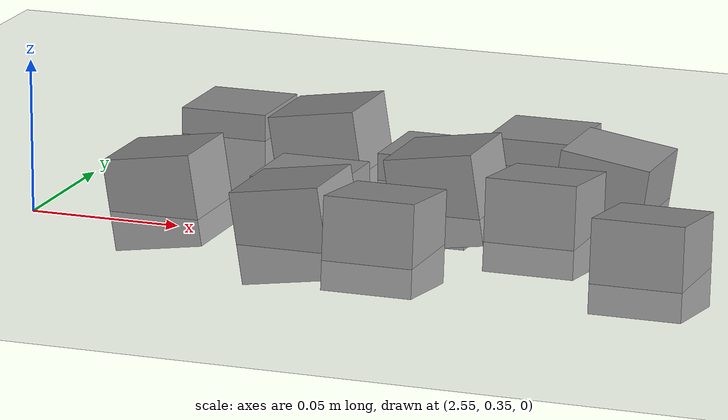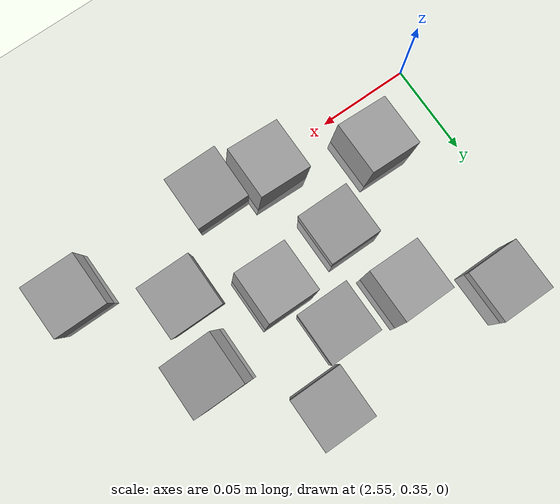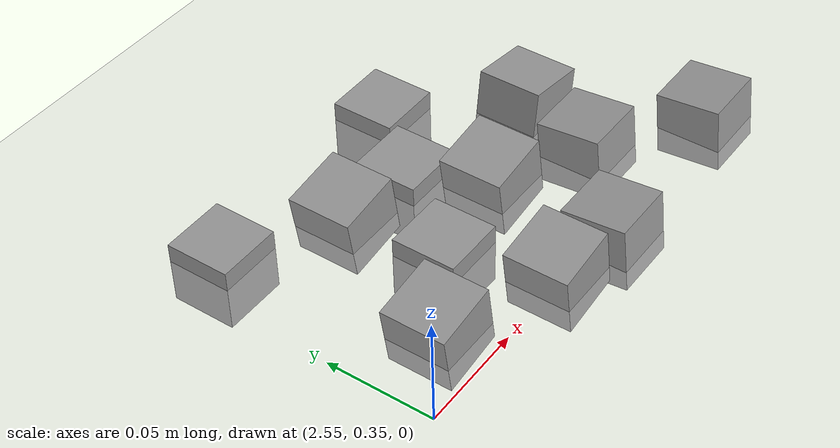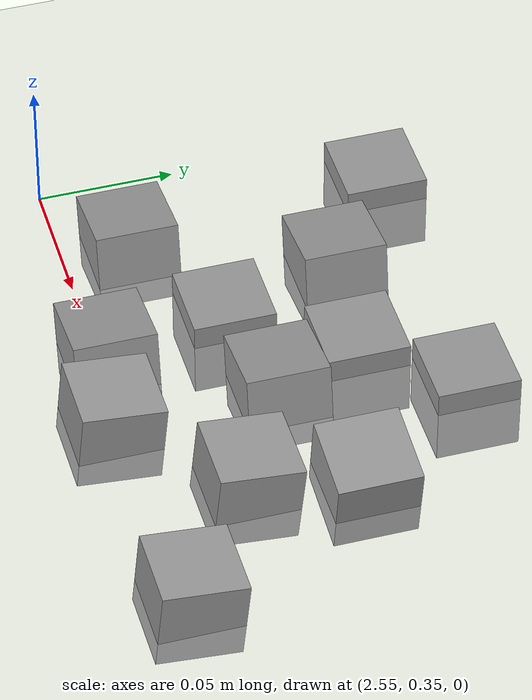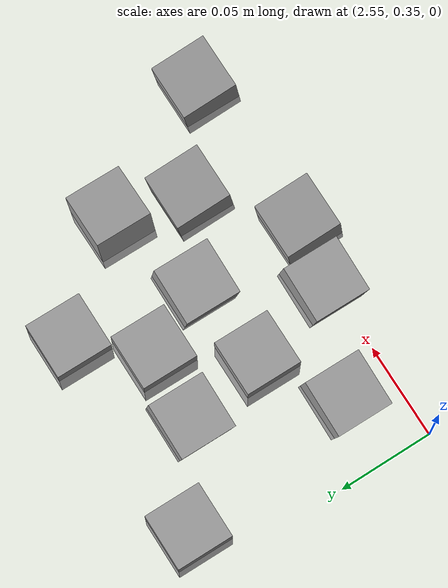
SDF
<sdf version="1.7">
 <world name="default">
  <model name="ground_plane">
   <static>1</static>
   <link name="link">
    <collision name="collision">
     <geometry><plane><normal>0 0 1</normal><size>100 100</size></plane></geometry>
     <surface><friction><ode><mu>100</mu><mu2>50</mu2></ode></friction></surface>
    </collision>
    <visual name="visual">
     <cast_shadows>0</cast_shadows>
     <geometry><plane><normal>0 0 1</normal><size>100 100</size></plane></geometry>
     <material>
      <script><uri>file://media/materials/scripts/gazebo.material</uri><name>Gazebo/Grey</name></script>
     </material>
    </visual>
   </link>
  </model>
  <model name="stone_road_7">
   <link name="link_0_clone_2_clone_2">
    <inertial>
     <mass>1</mass>
     <inertia>
      <ixx>0.166667</ixx>
      <ixy>0</ixy>
      <ixz>0</ixz>
      <iyy>0.166667</iyy>
      <iyz>0</iyz>
      <izz>0.166667</izz>
     </inertia>
    </inertial>
    <pose>0.066563 0.110568 0.003778 0 -0.15 0</pose>
    <kinematic>1</kinematic>
    <visual name="visual">
     <geometry><box><size>0.03 0.03 0.03</size></box></geometry>
     <material>
      <lighting>1</lighting>
      <script><uri>file://media/materials/scripts/gazebo.material</uri><name>Gazebo/Grey</name></script>
      <shader type="pixel"><normal_map>__default__</normal_map></shader>
      <ambient>0.3 0.3 0.3 1</ambient>
      <diffuse>0.7 0.7 0.7 1</diffuse>
      <specular>0.01 0.01 0.01 1</specular>
      <emissive>0 0 0 1</emissive>
     </material>
    </visual>
    <collision name="collision">
     <geometry><box><size>0.03 0.03 0.03</size></box></geometry>
     <surface>
      <friction>
       <ode><mu>1</mu><mu2>1</mu2><fdir1>0 0 0</fdir1><slip1>0</slip1><slip2>0</slip2></ode>
       <torsional>
        <coefficient>1</coefficient>
        <patch_radius>0</patch_radius>
        <surface_radius>0</surface_radius>
        <use_patch_radius>1</use_patch_radius>
        <ode><slip>0</slip></ode>
       </torsional>
      </friction>
      <bounce><restitution_coefficient>0</restitution_coefficient><threshold>1e+06</threshold></bounce>
      <contact>
       <collide_without_contact>0</collide_without_contact>
       <collide_without_contact_bitmask>1</collide_without_contact_bitmask>
       <collide_bitmask>1</collide_bitmask>
       <ode>
        <soft_cfm>0</soft_cfm>
        <soft_erp>0.2</soft_erp>
        <kp>1e+13</kp>
        <kd>1</kd>
        <max_vel>0.01</max_vel>
        <min_depth>0</min_depth>
       </ode>
       <bullet>
        <split_impulse>1</split_impulse>
        <split_impulse_penetration_threshold>-0.01</split_impulse_penetration_threshold>
        <soft_cfm>0</soft_cfm>
        <soft_erp>0.2</soft_erp>
        <kp>1e+13</kp>
        <kd>1</kd>
       </bullet>
      </contact>
     </surface>
    </collision>
   </link>
   <link name="link_0_clone_2_clone_2_clone_10">
    <inertial>
     <mass>1</mass>
     <inertia>
      <ixx>0.166667</ixx>
      <ixy>0</ixy>
      <ixz>0</ixz>
      <iyy>0.166667</iyy>
      <iyz>0</iyz>
      <izz>0.166667</izz>
     </inertia>
    </inertial>
    <pose>0.09869 0.163436 0.003778 0 -0.15 0</pose>
    <kinematic>1</kinematic>
    <visual name="visual">
     <geometry><box><size>0.03 0.03 0.03</size></box></geometry>
     <material>
      <lighting>1</lighting>
      <script><uri>file://media/materials/scripts/gazebo.material</uri><name>Gazebo/Grey</name></script>
      <shader type="pixel"><normal_map>__default__</normal_map></shader>
      <ambient>0.3 0.3 0.3 1</ambient>
      <diffuse>0.7 0.7 0.7 1</diffuse>
      <specular>0.01 0.01 0.01 1</specular>
      <emissive>0 0 0 1</emissive>
     </material>
    </visual>
    <collision name="collision">
     <geometry><box><size>0.03 0.03 0.03</size></box></geometry>
     <surface>
      <friction>
       <ode><mu>1</mu><mu2>1</mu2><fdir1>0 0 0</fdir1><slip1>0</slip1><slip2>0</slip2></ode>
       <torsional>
        <coefficient>1</coefficient>
        <patch_radius>0</patch_radius>
        <surface_radius>0</surface_radius>
        <use_patch_radius>1</use_patch_radius>
        <ode><slip>0</slip></ode>
       </torsional>
      </friction>
      <bounce><restitution_coefficient>0</restitution_coefficient><threshold>1e+06</threshold></bounce>
      <contact>
       <collide_without_contact>0</collide_without_contact>
       <collide_without_contact_bitmask>1</collide_without_contact_bitmask>
       <collide_bitmask>1</collide_bitmask>
       <ode>
        <soft_cfm>0</soft_cfm>
        <soft_erp>0.2</soft_erp>
        <kp>1e+13</kp>
        <kd>1</kd>
        <max_vel>0.01</max_vel>
        <min_depth>0</min_depth>
       </ode>
       <bullet>
        <split_impulse>1</split_impulse>
        <split_impulse_penetration_threshold>-0.01</split_impulse_penetration_threshold>
        <soft_cfm>0</soft_cfm>
        <soft_erp>0.2</soft_erp>
        <kp>1e+13</kp>
        <kd>1</kd>
       </bullet>
      </contact>
     </surface>
    </collision>
   </link>
   <link name="link_0_clone_2_clone_2_clone_12">
    <inertial>
     <mass>1</mass>
     <inertia>
      <ixx>0.166667</ixx>
      <ixy>0</ixy>
      <ixz>0</ixz>
      <iyy>0.166667</iyy>
      <iyz>0</iyz>
      <izz>0.166667</izz>
     </inertia>
    </inertial>
    <pose>0.044693 0.200081 0.003778 0 -0.15 0</pose>
    <kinematic>1</kinematic>
    <visual name="visual">
     <geometry><box><size>0.03 0.03 0.03</size></box></geometry>
     <material>
      <lighting>1</lighting>
      <script><uri>file://media/materials/scripts/gazebo.material</uri><name>Gazebo/Grey</name></script>
      <shader type="pixel"><normal_map>__default__</normal_map></shader>
      <ambient>0.3 0.3 0.3 1</ambient>
      <diffuse>0.7 0.7 0.7 1</diffuse>
      <specular>0.01 0.01 0.01 1</specular>
      <emissive>0 0 0 1</emissive>
     </material>
    </visual>
    <collision name="collision">
     <geometry><box><size>0.03 0.03 0.03</size></box></geometry>
     <surface>
      <friction>
       <ode><mu>1</mu><mu2>1</mu2><fdir1>0 0 0</fdir1><slip1>0</slip1><slip2>0</slip2></ode>
       <torsional>
        <coefficient>1</coefficient>
        <patch_radius>0</patch_radius>
        <surface_radius>0</surface_radius>
        <use_patch_radius>1</use_patch_radius>
        <ode><slip>0</slip></ode>
       </torsional>
      </friction>
      <bounce><restitution_coefficient>0</restitution_coefficient><threshold>1e+06</threshold></bounce>
      <contact>
       <collide_without_contact>0</collide_without_contact>
       <collide_without_contact_bitmask>1</collide_without_contact_bitmask>
       <collide_bitmask>1</collide_bitmask>
       <ode>
        <soft_cfm>0</soft_cfm>
        <soft_erp>0.2</soft_erp>
        <kp>1e+13</kp>
        <kd>1</kd>
        <max_vel>0.01</max_vel>
        <min_depth>0</min_depth>
       </ode>
       <bullet>
        <split_impulse>1</split_impulse>
        <split_impulse_penetration_threshold>-0.01</split_impulse_penetration_threshold>
        <soft_cfm>0</soft_cfm>
        <soft_erp>0.2</soft_erp>
        <kp>1e+13</kp>
        <kd>1</kd>
       </bullet>
      </contact>
     </surface>
    </collision>
   </link>
   <link name="link_0_clone_2_clone_2_clone_13">
    <inertial>
     <mass>1</mass>
     <inertia>
      <ixx>0.166667</ixx>
      <ixy>0</ixy>
      <ixz>0</ixz>
      <iyy>0.166667</iyy>
      <iyz>0</iyz>
      <izz>0.166667</izz>
     </inertia>
    </inertial>
    <pose>0.014407 0.13189 0.003778 0 -0.15 0</pose>
    <kinematic>1</kinematic>
    <visual name="visual">
     <geometry><box><size>0.03 0.03 0.03</size></box></geometry>
     <material>
      <lighting>1</lighting>
      <script><uri>file://media/materials/scripts/gazebo.material</uri><name>Gazebo/Grey</name></script>
      <shader type="pixel"><normal_map>__default__</normal_map></shader>
      <ambient>0.3 0.3 0.3 1</ambient>
      <diffuse>0.7 0.7 0.7 1</diffuse>
      <specular>0.01 0.01 0.01 1</specular>
      <emissive>0 0 0 1</emissive>
     </material>
    </visual>
    <collision name="collision">
     <geometry><box><size>0.03 0.03 0.03</size></box></geometry>
     <surface>
      <friction>
       <ode><mu>1</mu><mu2>1</mu2><fdir1>0 0 0</fdir1><slip1>0</slip1><slip2>0</slip2></ode>
       <torsional>
        <coefficient>1</coefficient>
        <patch_radius>0</patch_radius>
        <surface_radius>0</surface_radius>
        <use_patch_radius>1</use_patch_radius>
        <ode><slip>0</slip></ode>
       </torsional>
      </friction>
      <bounce><restitution_coefficient>0</restitution_coefficient><threshold>1e+06</threshold></bounce>
      <contact>
       <collide_without_contact>0</collide_without_contact>
       <collide_without_contact_bitmask>1</collide_without_contact_bitmask>
       <collide_bitmask>1</collide_bitmask>
       <ode>
        <soft_cfm>0</soft_cfm>
        <soft_erp>0.2</soft_erp>
        <kp>1e+13</kp>
        <kd>1</kd>
        <max_vel>0.01</max_vel>
        <min_depth>0</min_depth>
       </ode>
       <bullet>
        <split_impulse>1</split_impulse>
        <split_impulse_penetration_threshold>-0.01</split_impulse_penetration_threshold>
        <soft_cfm>0</soft_cfm>
        <soft_erp>0.2</soft_erp>
        <kp>1e+13</kp>
        <kd>1</kd>
       </bullet>
      </contact>
     </surface>
    </collision>
   </link>
   <link name="link_0_clone_2_clone_2_clone_13_clone">
    <inertial>
     <mass>1</mass>
     <inertia>
      <ixx>0.166667</ixx>
      <ixy>0</ixy>
      <ixz>0</ixz>
      <iyy>0.166667</iyy>
      <iyz>0</iyz>
      <izz>0.166667</izz>
     </inertia>
    </inertial>
    <pose>0.138846 0.140956 0.003778 -0.1 0 0</pose>
    <kinematic>1</kinematic>
    <visual name="visual">
     <geometry><box><size>0.03 0.03 0.03</size></box></geometry>
     <material>
      <lighting>1</lighting>
      <script><uri>file://media/materials/scripts/gazebo.material</uri><name>Gazebo/Grey</name></script>
      <shader type="pixel"><normal_map>__default__</normal_map></shader>
      <ambient>0.3 0.3 0.3 1</ambient>
      <diffuse>0.7 0.7 0.7 1</diffuse>
      <specular>0.01 0.01 0.01 1</specular>
      <emissive>0 0 0 1</emissive>
     </material>
    </visual>
    <collision name="collision">
     <geometry><box><size>0.03 0.03 0.03</size></box></geometry>
     <surface>
      <friction>
       <ode><mu>1</mu><mu2>1</mu2><fdir1>0 0 0</fdir1><slip1>0</slip1><slip2>0</slip2></ode>
       <torsional>
        <coefficient>1</coefficient>
        <patch_radius>0</patch_radius>
        <surface_radius>0</surface_radius>
        <use_patch_radius>1</use_patch_radius>
        <ode><slip>0</slip></ode>
       </torsional>
      </friction>
      <bounce><restitution_coefficient>0</restitution_coefficient><threshold>1e+06</threshold></bounce>
      <contact>
       <collide_without_contact>0</collide_without_contact>
       <collide_without_contact_bitmask>1</collide_without_contact_bitmask>
       <collide_bitmask>1</collide_bitmask>
       <ode>
        <soft_cfm>0</soft_cfm>
        <soft_erp>0.2</soft_erp>
        <kp>1e+13</kp>
        <kd>1</kd>
        <max_vel>0.01</max_vel>
        <min_depth>0</min_depth>
       </ode>
       <bullet>
        <split_impulse>1</split_impulse>
        <split_impulse_penetration_threshold>-0.01</split_impulse_penetration_threshold>
        <soft_cfm>0</soft_cfm>
        <soft_erp>0.2</soft_erp>
        <kp>1e+13</kp>
        <kd>1</kd>
       </bullet>
      </contact>
     </surface>
    </collision>
   </link>
   <link name="link_0_clone_2_clone_2_clone_13_clone_clone">
    <inertial>
     <mass>1</mass>
     <inertia>
      <ixx>0.166667</ixx>
      <ixy>0</ixy>
      <ixz>0</ixz>
      <iyy>0.166667</iyy>
      <iyz>0</iyz>
      <izz>0.166667</izz>
     </inertia>
    </inertial>
    <pose>0.184456 0.108712 0.003778 -0.1 0 0</pose>
    <kinematic>1</kinematic>
    <visual name="visual">
     <geometry><box><size>0.03 0.03 0.03</size></box></geometry>
     <material>
      <lighting>1</lighting>
      <script><uri>file://media/materials/scripts/gazebo.material</uri><name>Gazebo/Grey</name></script>
      <shader type="pixel"><normal_map>__default__</normal_map></shader>
      <ambient>0.3 0.3 0.3 1</ambient>
      <diffuse>0.7 0.7 0.7 1</diffuse>
      <specular>0.01 0.01 0.01 1</specular>
      <emissive>0 0 0 1</emissive>
     </material>
    </visual>
    <collision name="collision">
     <geometry><box><size>0.03 0.03 0.03</size></box></geometry>
     <surface>
      <friction>
       <ode><mu>1</mu><mu2>1</mu2><fdir1>0 0 0</fdir1><slip1>0</slip1><slip2>0</slip2></ode>
       <torsional>
        <coefficient>1</coefficient>
        <patch_radius>0</patch_radius>
        <surface_radius>0</surface_radius>
        <use_patch_radius>1</use_patch_radius>
        <ode><slip>0</slip></ode>
       </torsional>
      </friction>
      <bounce><restitution_coefficient>0</restitution_coefficient><threshold>1e+06</threshold></bounce>
      <contact>
       <collide_without_contact>0</collide_without_contact>
       <collide_without_contact_bitmask>1</collide_without_contact_bitmask>
       <collide_bitmask>1</collide_bitmask>
       <ode>
        <soft_cfm>0</soft_cfm>
        <soft_erp>0.2</soft_erp>
        <kp>1e+13</kp>
        <kd>1</kd>
        <max_vel>0.01</max_vel>
        <min_depth>0</min_depth>
       </ode>
       <bullet>
        <split_impulse>1</split_impulse>
        <split_impulse_penetration_threshold>-0.01</split_impulse_penetration_threshold>
        <soft_cfm>0</soft_cfm>
        <soft_erp>0.2</soft_erp>
        <kp>1e+13</kp>
        <kd>1</kd>
       </bullet>
      </contact>
     </surface>
    </collision>
   </link>
   <link name="link_0_clone_2_clone_2_clone_13_clone_clone_1">
    <inertial>
     <mass>1</mass>
     <inertia>
      <ixx>0.166667</ixx>
      <ixy>0</ixy>
      <ixz>0</ixz>
      <iyy>0.166667</iyy>
      <iyz>0</iyz>
      <izz>0.166667</izz>
     </inertia>
    </inertial>
    <pose>0.098415 0.103772 0.003778 -0.1 0 0</pose>
    <kinematic>1</kinematic>
    <visual name="visual">
     <geometry><box><size>0.03 0.03 0.03</size></box></geometry>
     <material>
      <lighting>1</lighting>
      <script><uri>file://media/materials/scripts/gazebo.material</uri><name>Gazebo/Grey</name></script>
      <shader type="pixel"><normal_map>__default__</normal_map></shader>
      <ambient>0.3 0.3 0.3 1</ambient>
      <diffuse>0.7 0.7 0.7 1</diffuse>
      <specular>0.01 0.01 0.01 1</specular>
      <emissive>0 0 0 1</emissive>
     </material>
    </visual>
    <collision name="collision">
     <geometry><box><size>0.03 0.03 0.03</size></box></geometry>
     <surface>
      <friction>
       <ode><mu>1</mu><mu2>1</mu2><fdir1>0 0 0</fdir1><slip1>0</slip1><slip2>0</slip2></ode>
       <torsional>
        <coefficient>1</coefficient>
        <patch_radius>0</patch_radius>
        <surface_radius>0</surface_radius>
        <use_patch_radius>1</use_patch_radius>
        <ode><slip>0</slip></ode>
       </torsional>
      </friction>
      <bounce><restitution_coefficient>0</restitution_coefficient><threshold>1e+06</threshold></bounce>
      <contact>
       <collide_without_contact>0</collide_without_contact>
       <collide_without_contact_bitmask>1</collide_without_contact_bitmask>
       <collide_bitmask>1</collide_bitmask>
       <ode>
        <soft_cfm>0</soft_cfm>
        <soft_erp>0.2</soft_erp>
        <kp>1e+13</kp>
        <kd>1</kd>
        <max_vel>0.01</max_vel>
        <min_depth>0</min_depth>
       </ode>
       <bullet>
        <split_impulse>1</split_impulse>
        <split_impulse_penetration_threshold>-0.01</split_impulse_penetration_threshold>
        <soft_cfm>0</soft_cfm>
        <soft_erp>0.2</soft_erp>
        <kp>1e+13</kp>
        <kd>1</kd>
       </bullet>
      </contact>
     </surface>
    </collision>
   </link>
   <link name="link_0_clone_2_clone_2_clone_13_clone_clone_16">
    <inertial>
     <mass>1</mass>
     <inertia>
      <ixx>0.166667</ixx>
      <ixy>0</ixy>
      <ixz>0</ixz>
      <iyy>0.166667</iyy>
      <iyz>0</iyz>
      <izz>0.166667</izz>
     </inertia>
    </inertial>
    <pose>0.108948 0.22849 -0.006222 0 -0 0</pose>
    <kinematic>1</kinematic>
    <visual name="visual">
     <geometry><box><size>0.03 0.03 0.03</size></box></geometry>
     <material>
      <lighting>1</lighting>
      <script><uri>file://media/materials/scripts/gazebo.material</uri><name>Gazebo/Grey</name></script>
      <shader type="pixel"><normal_map>__default__</normal_map></shader>
      <ambient>0.3 0.3 0.3 1</ambient>
      <diffuse>0.7 0.7 0.7 1</diffuse>
      <specular>0.01 0.01 0.01 1</specular>
      <emissive>0 0 0 1</emissive>
     </material>
    </visual>
    <collision name="collision">
     <geometry><box><size>0.03 0.03 0.03</size></box></geometry>
     <surface>
      <friction>
       <ode><mu>1</mu><mu2>1</mu2><fdir1>0 0 0</fdir1><slip1>0</slip1><slip2>0</slip2></ode>
       <torsional>
        <coefficient>1</coefficient>
        <patch_radius>0</patch_radius>
        <surface_radius>0</surface_radius>
        <use_patch_radius>1</use_patch_radius>
        <ode><slip>0</slip></ode>
       </torsional>
      </friction>
      <bounce><restitution_coefficient>0</restitution_coefficient><threshold>1e+06</threshold></bounce>
      <contact>
       <collide_without_contact>0</collide_without_contact>
       <collide_without_contact_bitmask>1</collide_without_contact_bitmask>
       <collide_bitmask>1</collide_bitmask>
       <ode>
        <soft_cfm>0</soft_cfm>
        <soft_erp>0.2</soft_erp>
        <kp>1e+13</kp>
        <kd>1</kd>
        <max_vel>0.01</max_vel>
        <min_depth>0</min_depth>
       </ode>
       <bullet>
        <split_impulse>1</split_impulse>
        <split_impulse_penetration_threshold>-0.01</split_impulse_penetration_threshold>
        <soft_cfm>0</soft_cfm>
        <soft_erp>0.2</soft_erp>
        <kp>1e+13</kp>
        <kd>1</kd>
       </bullet>
      </contact>
     </surface>
    </collision>
   </link>
   <link name="link_0_clone_2_clone_2_clone_13_clone_clone_16_clone">
    <inertial>
     <mass>1</mass>
     <inertia>
      <ixx>0.166667</ixx>
      <ixy>0</ixy>
      <ixz>0</ixz>
      <iyy>0.166667</iyy>
      <iyz>0</iyz>
      <izz>0.166667</izz>
     </inertia>
    </inertial>
    <pose>0.0535 0.156403 -0.006222 0 -0 0</pose>
    <kinematic>1</kinematic>
    <visual name="visual">
     <geometry><box><size>0.03 0.03 0.03</size></box></geometry>
     <material>
      <lighting>1</lighting>
      <script><uri>file://media/materials/scripts/gazebo.material</uri><name>Gazebo/Grey</name></script>
      <shader type="pixel"><normal_map>__default__</normal_map></shader>
      <ambient>0.3 0.3 0.3 1</ambient>
      <diffuse>0.7 0.7 0.7 1</diffuse>
      <specular>0.01 0.01 0.01 1</specular>
      <emissive>0 0 0 1</emissive>
     </material>
    </visual>
    <collision name="collision">
     <geometry><box><size>0.03 0.03 0.03</size></box></geometry>
     <surface>
      <friction>
       <ode><mu>1</mu><mu2>1</mu2><fdir1>0 0 0</fdir1><slip1>0</slip1><slip2>0</slip2></ode>
       <torsional>
        <coefficient>1</coefficient>
        <patch_radius>0</patch_radius>
        <surface_radius>0</surface_radius>
        <use_patch_radius>1</use_patch_radius>
        <ode><slip>0</slip></ode>
       </torsional>
      </friction>
      <bounce><restitution_coefficient>0</restitution_coefficient><threshold>1e+06</threshold></bounce>
      <contact>
       <collide_without_contact>0</collide_without_contact>
       <collide_without_contact_bitmask>1</collide_without_contact_bitmask>
       <collide_bitmask>1</collide_bitmask>
       <ode>
        <soft_cfm>0</soft_cfm>
        <soft_erp>0.2</soft_erp>
        <kp>1e+13</kp>
        <kd>1</kd>
        <max_vel>0.01</max_vel>
        <min_depth>0</min_depth>
       </ode>
       <bullet>
        <split_impulse>1</split_impulse>
        <split_impulse_penetration_threshold>-0.01</split_impulse_penetration_threshold>
        <soft_cfm>0</soft_cfm>
        <soft_erp>0.2</soft_erp>
        <kp>1e+13</kp>
        <kd>1</kd>
       </bullet>
      </contact>
     </surface>
    </collision>
   </link>
   <link name="link_0_clone_2_clone_2_clone_13_clone_clone_16_clone_23">
    <inertial>
     <mass>1</mass>
     <inertia>
      <ixx>0.166667</ixx>
      <ixy>0</ixy>
      <ixz>0</ixz>
      <iyy>0.166667</iyy>
      <iyz>0</iyz>
      <izz>0.166667</izz>
     </inertia>
    </inertial>
    <pose>0.000385 0.228664 -0.006222 0 -0 0</pose>
    <kinematic>1</kinematic>
    <visual name="visual">
     <geometry><box><size>0.03 0.03 0.03</size></box></geometry>
     <material>
      <lighting>1</lighting>
      <script><uri>file://media/materials/scripts/gazebo.material</uri><name>Gazebo/Grey</name></script>
      <shader type="pixel"><normal_map>__default__</normal_map></shader>
      <ambient>0.3 0.3 0.3 1</ambient>
      <diffuse>0.7 0.7 0.7 1</diffuse>
      <specular>0.01 0.01 0.01 1</specular>
      <emissive>0 0 0 1</emissive>
     </material>
    </visual>
    <collision name="collision">
     <geometry><box><size>0.03 0.03 0.03</size></box></geometry>
     <surface>
      <friction>
       <ode><mu>1</mu><mu2>1</mu2><fdir1>0 0 0</fdir1><slip1>0</slip1><slip2>0</slip2></ode>
       <torsional>
        <coefficient>1</coefficient>
        <patch_radius>0</patch_radius>
        <surface_radius>0</surface_radius>
        <use_patch_radius>1</use_patch_radius>
        <ode><slip>0</slip></ode>
       </torsional>
      </friction>
      <bounce><restitution_coefficient>0</restitution_coefficient><threshold>1e+06</threshold></bounce>
      <contact>
       <collide_without_contact>0</collide_without_contact>
       <collide_without_contact_bitmask>1</collide_without_contact_bitmask>
       <collide_bitmask>1</collide_bitmask>
       <ode>
        <soft_cfm>0</soft_cfm>
        <soft_erp>0.2</soft_erp>
        <kp>1e+13</kp>
        <kd>1</kd>
        <max_vel>0.01</max_vel>
        <min_depth>0</min_depth>
       </ode>
       <bullet>
        <split_impulse>1</split_impulse>
        <split_impulse_penetration_threshold>-0.01</split_impulse_penetration_threshold>
        <soft_cfm>0</soft_cfm>
        <soft_erp>0.2</soft_erp>
        <kp>1e+13</kp>
        <kd>1</kd>
       </bullet>
      </contact>
     </surface>
    </collision>
   </link>
   <link name="link_0_clone_2_clone_2_clone_13_clone_clone_16_clone_24">
    <inertial>
     <mass>1</mass>
     <inertia>
      <ixx>0.166667</ixx>
      <ixy>0</ixy>
      <ixz>0</ixz>
      <iyy>0.166667</iyy>
      <iyz>0</iyz>
      <izz>0.166667</izz>
     </inertia>
    </inertial>
    <pose>0.08246 0.196776 -0.006222 0 -0 0</pose>
    <kinematic>1</kinematic>
    <visual name="visual">
     <geometry><box><size>0.03 0.03 0.03</size></box></geometry>
     <material>
      <lighting>1</lighting>
      <script><uri>file://media/materials/scripts/gazebo.material</uri><name>Gazebo/Grey</name></script>
      <shader type="pixel"><normal_map>__default__</normal_map></shader>
      <ambient>0.3 0.3 0.3 1</ambient>
      <diffuse>0.7 0.7 0.7 1</diffuse>
      <specular>0.01 0.01 0.01 1</specular>
      <emissive>0 0 0 1</emissive>
     </material>
    </visual>
    <collision name="collision">
     <geometry><box><size>0.03 0.03 0.03</size></box></geometry>
     <surface>
      <friction>
       <ode><mu>1</mu><mu2>1</mu2><fdir1>0 0 0</fdir1><slip1>0</slip1><slip2>0</slip2></ode>
       <torsional>
        <coefficient>1</coefficient>
        <patch_radius>0</patch_radius>
        <surface_radius>0</surface_radius>
        <use_patch_radius>1</use_patch_radius>
        <ode><slip>0</slip></ode>
       </torsional>
      </friction>
      <bounce><restitution_coefficient>0</restitution_coefficient><threshold>1e+06</threshold></bounce>
      <contact>
       <collide_without_contact>0</collide_without_contact>
       <collide_without_contact_bitmask>1</collide_without_contact_bitmask>
       <collide_bitmask>1</collide_bitmask>
       <ode>
        <soft_cfm>0</soft_cfm>
        <soft_erp>0.2</soft_erp>
        <kp>1e+13</kp>
        <kd>1</kd>
        <max_vel>0.01</max_vel>
        <min_depth>0</min_depth>
       </ode>
       <bullet>
        <split_impulse>1</split_impulse>
        <split_impulse_penetration_threshold>-0.01</split_impulse_penetration_threshold>
        <soft_cfm>0</soft_cfm>
        <soft_erp>0.2</soft_erp>
        <kp>1e+13</kp>
        <kd>1</kd>
       </bullet>
      </contact>
     </surface>
    </collision>
   </link>
   <link name="link_0_clone_2_clone_9">
    <inertial>
     <mass>1</mass>
     <inertia>
      <ixx>0.166667</ixx>
      <ixy>0</ixy>
      <ixz>0</ixz>
      <iyy>0.166667</iyy>
      <iyz>0</iyz>
      <izz>0.166667</izz>
     </inertia>
    </inertial>
    <pose>0.148876 0.179752 0.003778 0 0.15 0</pose>
    <kinematic>1</kinematic>
    <visual name="visual">
     <geometry><box><size>0.03 0.03 0.03</size></box></geometry>
     <material>
      <lighting>1</lighting>
      <script><uri>file://media/materials/scripts/gazebo.material</uri><name>Gazebo/Grey</name></script>
      <shader type="pixel"><normal_map>__default__</normal_map></shader>
      <ambient>0.3 0.3 0.3 1</ambient>
      <diffuse>0.7 0.7 0.7 1</diffuse>
      <specular>0.01 0.01 0.01 1</specular>
      <emissive>0 0 0 1</emissive>
     </material>
    </visual>
    <collision name="collision">
     <geometry><box><size>0.03 0.03 0.03</size></box></geometry>
     <surface>
      <friction>
       <ode><mu>1</mu><mu2>1</mu2><fdir1>0 0 0</fdir1><slip1>0</slip1><slip2>0</slip2></ode>
       <torsional>
        <coefficient>1</coefficient>
        <patch_radius>0</patch_radius>
        <surface_radius>0</surface_radius>
        <use_patch_radius>1</use_patch_radius>
        <ode><slip>0</slip></ode>
       </torsional>
      </friction>
      <bounce><restitution_coefficient>0</restitution_coefficient><threshold>1e+06</threshold></bounce>
      <contact>
       <collide_without_contact>0</collide_without_contact>
       <collide_without_contact_bitmask>1</collide_without_contact_bitmask>
       <collide_bitmask>1</collide_bitmask>
       <ode>
        <soft_cfm>0</soft_cfm>
        <soft_erp>0.2</soft_erp>
        <kp>1e+13</kp>
        <kd>1</kd>
        <max_vel>0.01</max_vel>
        <min_depth>0</min_depth>
       </ode>
       <bullet>
        <split_impulse>1</split_impulse>
        <split_impulse_penetration_threshold>-0.01</split_impulse_penetration_threshold>
        <soft_cfm>0</soft_cfm>
        <soft_erp>0.2</soft_erp>
        <kp>1e+13</kp>
        <kd>1</kd>
       </bullet>
      </contact>
     </surface>
    </collision>
   </link>
   <static>0</static>
   <pose>2.57282 0.242462 -0 0 -0 0</pose>
  </model>
 </world>
</sdf>
